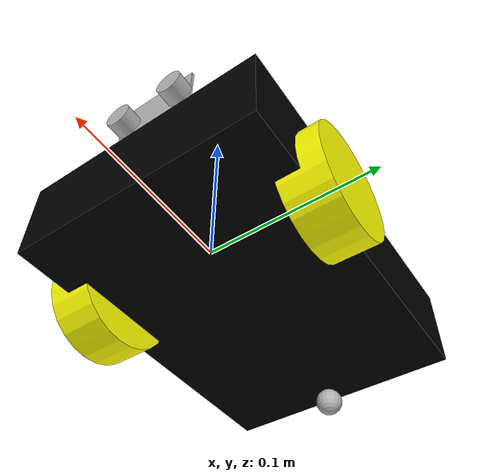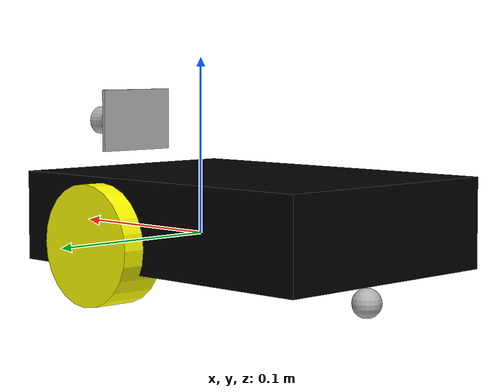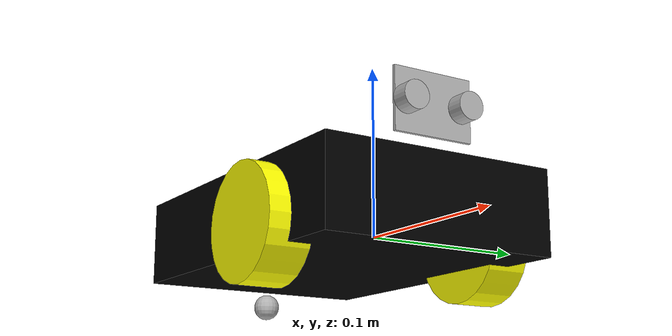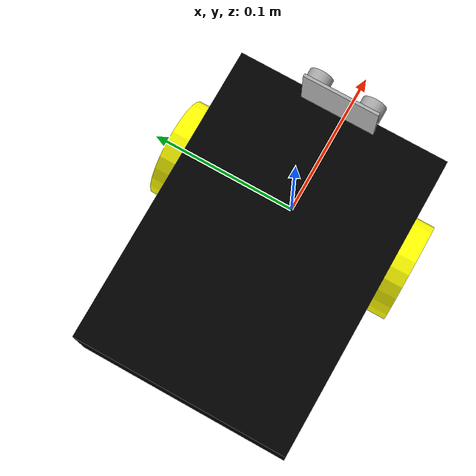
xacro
<?xml version="1.0"?>
<!-- 'xmlns:gz' is to supress errors on namespacing custum gazebo plugins/sensors -->
<robot xmlns:xacro="http://www.ros.org/wiki/xacro"
    xmlns:gz="http://gazebosim.org/schema">
    <xacro:include filename="inertial_macros.xacro" />
    <!-- Dimensions -->
    <!-- Chassis -->
    <xacro:property name="chassis_length" value="0.205" />
    <xacro:property name="chassis_width" value="0.145" />
    <xacro:property name="chassis_height" value="0.050" />
    <xacro:property name="chassis_mass" value="0.6" />
    <!-- Wheels -->
    <xacro:property name="wheel_radius" value="0.033" />
    <xacro:property name="wheel_thickness" value="0.026" />
    <xacro:property name="wheel_mass" value="0.038" />
    <xacro:property name="wheel_offset_x" value="0.14" />
    <xacro:property name="wheel_offset_y" value="0.072" />
    <xacro:property name="wheel_offset_z" value="0.014" />
    <xacro:property name="wheel_separation" value="${2 * wheel_offset_y}" />
    <!-- Caster wheel -->
    <xacro:property name="caster_wheel_radius" value="0.008" />
    <xacro:property name="caster_wheel_mass" value="0.016" />
    <xacro:property name="caster_wheel_offset_x" value="0.016" />
    <xacro:property name="caster_wheel_offset_z" value="-0.012" />
    <!-- Sweep sensor -->
    <xacro:property name="sweep_sensor_joint_offset_x" value="0.187" />
    <xacro:property name="sweep_sensor_joint_offset_z" value="0.059" />
    <!-- lower limit -45deg, upper limit 45deg-->
    <!-- not sure what "effort" means -->
    <!-- speed 60 deg per 0.3 secs. see
    https://osoyoo.store/en-eu/products/micro-servo-sg90-blue-for-arduino-v2-0-robot-carmodel-lacc200610#tab_technical-details -->
    <xacro:property name="sweep_sensor_joint_lower" value="-${(pi/180)*45}" />
    <xacro:property name="sweep_sensor_joint_upper" value="${(pi/180)*45}" />
    <xacro:property name="sweep_sensor_joint_effort" value="100.0" />
    <xacro:property name="sweep_sensor_joint_velocity" value="${((pi/180)*60)/0.3}" />
    <xacro:property name="sweep_sensor_mass" value="0.015" />
    <xacro:property name="sweep_sensor_backplate_offset_x" value="0.009" />
    <xacro:property name="sweep_sensor_backplate_offset_z" value="0.018" />
    <xacro:property name="sweep_sensor_backplate_length" value="0.002" />
    <xacro:property name="sweep_sensor_backplate_width" value="0.050" />
    <xacro:property name="sweep_sensor_backplate_height" value="0.036" />
    <xacro:property name="sweep_sensor_mic_offset_x" value="0.015" />
    <xacro:property name="sweep_sensor_mic_offset_y" value="0.010" />
    <xacro:property name="sweep_sensor_mic_offset_z" value="0.018" />
    <xacro:property name="sweep_sensor_mic_radius" value="0.008" />
    <xacro:property name="sweep_sensor_mic_length" value="0.010" />
    <xacro:property name="sweep_sensor_collision_length"
        value="${sweep_sensor_backplate_length + sweep_sensor_mic_length}" />
    <xacro:property name="sweep_sensor_collision_width" value="${sweep_sensor_backplate_width}" />
    <xacro:property name="sweep_sensor_collision_height" value="${sweep_sensor_backplate_height}" />
    <xacro:property name="sweep_sensor_collision_offset_x"
        value="${sweep_sensor_backplate_offset_x + (sweep_sensor_collision_length/2)}" />
    <xacro:property name="sweep_sensor_collision_offset_z"
        value="${sweep_sensor_backplate_offset_z}" />
    <!-- Materials -->
    <material name="white">
        <color rgba="1 1 1 1" />
    </material>
    <material name="orange">
        <color rgba="1 0.3 0.1 1" />
    </material>
    <material name="blue">
        <color rgba="0.2 0.2 1 1" />
    </material>
    <material name="black">
        <color rgba="0 0 0 1" />
    </material>
    <material name="yellow">
        <color rgba="1 1 0 1" />
    </material>
    <material name="silver">
        <color rgba="0.7 0.7 0.7 1" />
    </material>
    <!-- base (in middle of the two wheels) -->
    <link name="base_link">
        <origin xyz="0 0 0.033" />
    </link>
    <!-- CHASSIS (simplified body of the jvr-robot) -->
    <joint name="chassis_joint" type="fixed">
        <parent link="base_link" />
        <child link="chassis" />
        <origin xyz="${-wheel_offset_x} 0 ${-wheel_offset_z}" />
    </joint>
    <link name="chassis">
        <visual>
            <origin xyz="${chassis_length/2} 0 ${chassis_height/2}" />
            <geometry>
                <box size="${chassis_length} ${chassis_width} ${chassis_height}" />
            </geometry>
            <material name="black" />
        </visual>
        <collision>
            <origin xyz="${chassis_length/2} 0 ${chassis_height/2}" />
            <geometry>
                <box size="${chassis_length} ${chassis_width} ${chassis_height}" />
            </geometry>
        </collision>
        <xacro:inertial_box mass="${chassis_mass}" x="${chassis_length}" y="${chassis_width}"
            z="${chassis_height}">
            <origin xyz="${chassis_length/2} 0 ${chassis_height/2}" rpy="0 0 0" />
        </xacro:inertial_box>
    </link>
    <!-- Left wheel -->
    <!-- The weels are half inside the box, because the outer edges are used as chassis -->
    <joint name="left_wheel_joint" type="continuous">
        <parent link="base_link" />
        <child link="left_wheel" />
        <origin xyz="0 ${wheel_offset_y} 0" rpy="-${pi/2} 0 0" />
        <axis xyz="0 0 1" />
    </joint>
    <link name="left_wheel">
        <visual>
            <origin xyz="0 0 0" rpy="0 0 0" />
            <geometry>
                <cylinder radius="${wheel_radius}" length="${wheel_thickness}" />
            </geometry>
            <material name="yellow" />
        </visual>
        <collision>
            <origin xyz="0 0 0" rpy="0 0 0" />
            <geometry>
                <cylinder radius="${wheel_radius}" length="${wheel_thickness}" />
            </geometry>
        </collision>
        <xacro:inertial_cylinder mass="${wheel_mass}" length="${wheel_thickness}"
            radius="${wheel_radius}">
            <origin xyz="0 0 0" rpy="0 0 0" />
        </xacro:inertial_cylinder>
    </link>
    <!-- Right wheel -->
    <!-- The weels are half inside the box, because the outer edges are used as chassis -->
    <joint name="right_wheel_joint" type="continuous">
        <parent link="base_link" />
        <child link="right_wheel" />
        <origin xyz="0 ${-wheel_offset_y} 0" rpy="${pi/2} 0 0" />
        <axis xyz="0 0 -1" />
    </joint>
    <link name="right_wheel">
        <visual>
            <origin xyz="0 0 0" rpy="0 0 0" />
            <geometry>
                <cylinder radius="${wheel_radius}" length="${wheel_thickness}" />
            </geometry>
            <material name="yellow" />
        </visual>
        <collision>
            <origin xyz="0 0 0" rpy="0 0 0" />
            <geometry>
                <cylinder radius="${wheel_radius}" length="${wheel_thickness}" />
            </geometry>
        </collision>
        <xacro:inertial_cylinder mass="${wheel_mass}" length="${wheel_thickness}"
            radius="${wheel_radius}">
            <origin xyz="0 0 0" rpy="0 0 0" />
        </xacro:inertial_cylinder>
    </link>
    <!-- Caster wheel -->
    <joint name="caster_wheel_joint" type="fixed">
        <parent link="chassis" />
        <child link="caster_wheel" />
        <origin xyz="${caster_wheel_offset_x} 0 ${caster_wheel_offset_z}" />
    </joint>
    <link name="caster_wheel">
        <visual>
            <origin xyz="0 0 0" rpy="0 0 0" />
            <geometry>
                <sphere radius="${caster_wheel_radius}" />
            </geometry>
            <material name="silver" />
        </visual>
        <collision>
            <origin xyz="0 0 0" rpy="0 0 0" />
            <geometry>
                <sphere radius="${caster_wheel_radius}" />
            </geometry>
        </collision>
        <xacro:inertial_sphere mass="${caster_wheel_mass}" radius="${caster_wheel_radius}">
            <origin xyz="0 0 0" rpy="0 0 0" />
        </xacro:inertial_sphere>
    </link>
    <!-- Sweep sensor -->
    <joint name="sweep_sensor_joint" type="revolute">
        <parent link="chassis" />
        <child link="sweep_sensor" />
        <origin xyz="${sweep_sensor_joint_offset_x} 0 ${sweep_sensor_joint_offset_z}" />
        <axis xyz="0 0 1" />
        <limit lower="${sweep_sensor_joint_lower}" upper="${sweep_sensor_joint_upper}"
            effort="${sweep_sensor_joint_effort}" velocity="${sweep_sensor_joint_velocity}" />
    </joint>
    <link name="sweep_sensor">
        <visual>
            <origin xyz="${sweep_sensor_backplate_offset_x} 0 ${sweep_sensor_backplate_offset_z}" />
            <geometry>
                <box
                    size="${sweep_sensor_backplate_length} ${sweep_sensor_backplate_width} ${sweep_sensor_backplate_height}" />
            </geometry>
            <material name="silver" />
        </visual>
        <visual>
            <origin
                xyz="${sweep_sensor_mic_offset_x} ${sweep_sensor_mic_offset_z} ${sweep_sensor_mic_offset_z}"
                rpy="0 ${pi/2} 0" />
            <geometry>
                <cylinder radius="${sweep_sensor_mic_radius}" length="${sweep_sensor_mic_length}" />
            </geometry>
            <material name="silver" />
        </visual>
        <visual>
            <origin
                xyz="${sweep_sensor_mic_offset_x} ${-sweep_sensor_mic_offset_z} ${sweep_sensor_mic_offset_z}"
                rpy="0 ${pi/2} 0" />
            <geometry>
                <cylinder radius="${sweep_sensor_mic_radius}" length="${sweep_sensor_mic_length}" />
            </geometry>
            <material name="silver" />
        </visual>
        <collision>
            <origin xyz="${sweep_sensor_collision_offset_x} 0 ${sweep_sensor_collision_offset_z}" />
            <geometry>
                <box
                    size="${sweep_sensor_collision_length} ${sweep_sensor_collision_width} ${sweep_sensor_collision_height}" />
            </geometry>
        </collision>
        <!-- using collision box for inertia-->
        <xacro:inertial_box mass="${sweep_sensor_mass}" x="${sweep_sensor_collision_length}"
            y="${sweep_sensor_collision_width}" z="${sweep_sensor_collision_height}">
            <origin xyz="${sweep_sensor_collision_offset_x} 0 ${sweep_sensor_collision_offset_z}"
                rpy="0 0 0" />
        </xacro:inertial_box>
    </link>
    <gazebo>
        <!--diff
        drive plugin-->
        <plugin filename="gz-sim-diff-drive-system" name="gz::sim::systems::DiffDrive">
            <left_joint>left_wheel_joint</left_joint>
            <right_joint>right_wheel_joint</right_joint>
            <wheel_separation>${wheel_separation}</wheel_separation>
            <wheel_radius>${wheel_radius}</wheel_radius>
            <odom_publish_frequency>1</odom_publish_frequency>
        </plugin>
        <plugin filename="gz-sim-joint-state-publisher-system"
            name="gz::sim::systems::JointStatePublisher" />
        <plugin filename="gz-sim-pose-publisher-system" name="gz::sim::systems::PosePublisher">
            <publish_link_pose>true</publish_link_pose>
            <use_pose_vector_msg>true</use_pose_vector_msg>
        </plugin>

    </gazebo>
    <gazebo reference="caster_wheel">
        <!-- er is geen "ball" type joint in URDF, make caster "slippery"-->
        <mu1 value="0.001" />
        <mu2 value="0.001" />
    </gazebo>
    <gazebo reference="sweep_sensor">

        <!-- Here's our custom sensor -->
        <sensor name="an_odometer" type="custom" gz:type="odometer">
            <always_on>1</always_on>
            <update_rate>30</update_rate>
            <visualize>true</visualize>
            <gz:odometer>
                <noise type="gaussian">
                    <mean>0.00001</mean>
                    <stddev>0.00001</stddev>
                </noise>
            </gz:odometer>
        </sensor>

        <sensor name="the_sweep_sensor" type="custom" gz:type="sweepsensor">
            <always_on>1</always_on>
            <update_rate>30</update_rate>
            <visualize>true</visualize>
            <topic>jorg_topic</topic>
            <gz:odometer>
                <noise type="gaussian">
                    <mean>0.00001</mean>
                    <stddev>0.00001</stddev>
                </noise>
            </gz:odometer>
        </sensor>

        <sensor name="gpu_lidar" type="gpu_lidar">
            <pose>${sweep_sensor_backplate_offset_x} 0 ${sweep_sensor_backplate_height/2} 0 0 0</pose>
            <topic>ultrasone_lidar</topic>
            <update_rate>10</update_rate>
            <enable_metrics>false</enable_metrics>
            <lidar>
                <scan>
                    <horizontal>
                        <samples>5</samples>
                        <resolution>1</resolution>
                        <!-- 30 degree angle ( pi / 6) -->
                        <min_angle>-0.261799</min_angle>
                        <max_angle>0.261799</max_angle>
                    </horizontal>
                    <vertical>
                        <samples>5</samples>
                        <!-- 30 degree angle -->
                        <min_angle>0.0</min_angle>
                        <max_angle>0.261799</max_angle>
                        <resolution>1</resolution>
                    </vertical>
                </scan>
                <range>
                    <!-- min 2cm, max 4m -->
                    <min>0.02</min>
                    <max>4.0</max>
                    <resolution>0.015000</resolution>
                </range>
                <noise>
                    <type>gaussian</type>
                    <mean>0.0</mean>
                    <stddev>0.01</stddev>
                </noise>
                <visibility_mask>4294967295</visibility_mask>
            </lidar>
        </sensor>
    </gazebo>
</robot>

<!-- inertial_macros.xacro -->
<robot xmlns:xacro="http://www.ros.org/wiki/xacro">
    <!-- source: https://github.com/joshnewans/articubot_one/blob/cd1eb0f503012a65552fd088cdbd9cf8ac133cbc/description/inertial_macros.xacro -->

    <!-- Specify some standard inertial calculations https://en.wikipedia.org/wiki/List_of_moments_of_inertia -->
    <!-- These make use of xacro's mathematical functionality -->

    <xacro:macro name="inertial_sphere" params="mass radius *origin">
        <inertial>
            <xacro:insert_block name="origin"/>
            <mass value="${mass}" />
            <inertia ixx="${(2/5) * mass * (radius*radius)}" ixy="0.0" ixz="0.0" iyy="${(2/5) * mass * (radius*radius)}" iyz="0.0" izz="${(2/5) * mass * (radius*radius)}" />
        </inertial>
    </xacro:macro>

    <xacro:macro name="inertial_box" params="mass x y z *origin">
        <inertial>
            <xacro:insert_block name="origin"/>
            <mass value="${mass}" />
            <inertia ixx="${(1/12) * mass * (y*y+z*z)}" ixy="0.0" ixz="0.0" iyy="${(1/12) * mass * (x*x+z*z)}" iyz="0.0" izz="${(1/12) * mass * (x*x+y*y)}" />
        </inertial>
    </xacro:macro>

    <xacro:macro name="inertial_cylinder" params="mass length radius *origin">
        <inertial>
            <xacro:insert_block name="origin"/>
            <mass value="${mass}" />
            <inertia ixx="${(1/12) * mass * (3*radius*radius + length*length)}" ixy="0.0" ixz="0.0" iyy="${(1/12) * mass * (3*radius*radius + length*length)}" iyz="0.0" izz="${(1/2) * mass * (radius*radius)}" />
        </inertial>
    </xacro:macro>

</robot>
